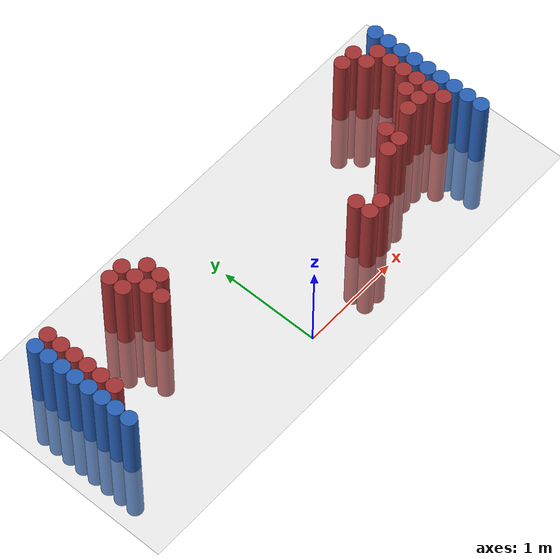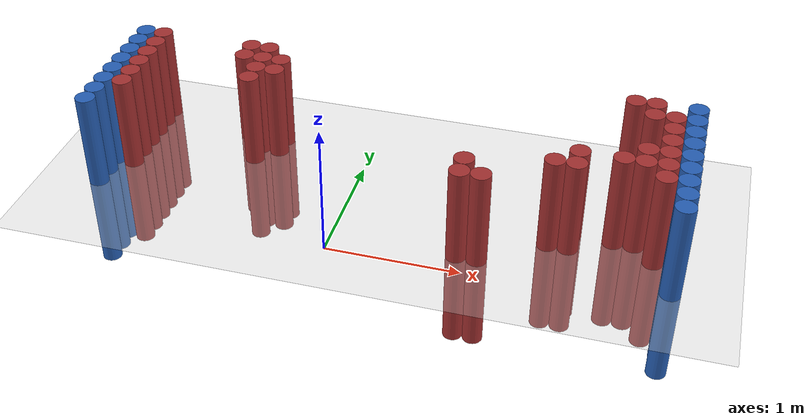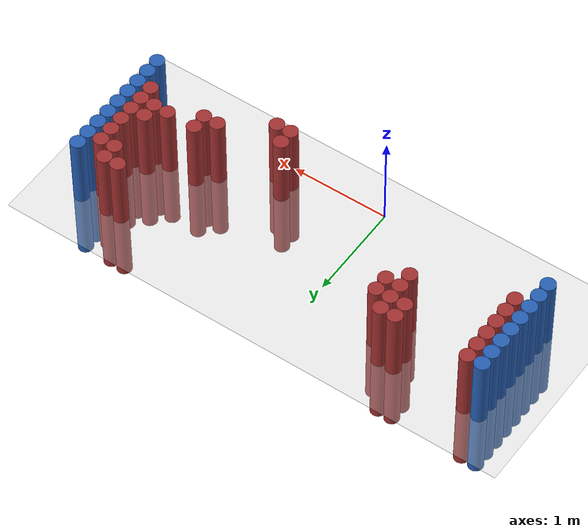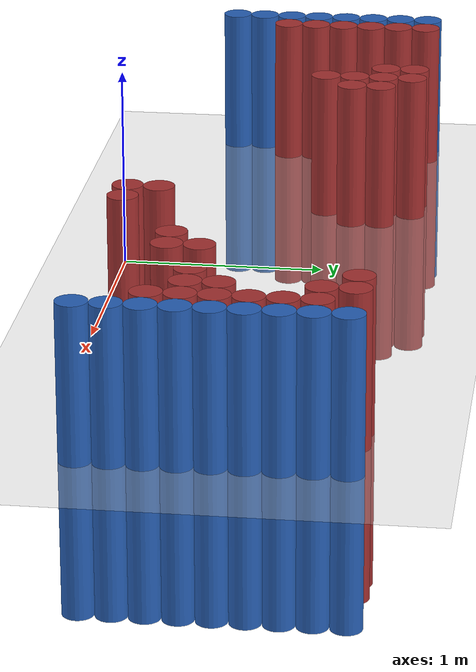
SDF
<sdf version="1.6">
 <world name="default">
  <model name="ground_plane">
   <static>1</static>
   <link name="link">
    <collision name="collision">
     <geometry><plane><normal>0 0 1</normal><size>100 100</size></plane></geometry>
     <surface><friction><ode><mu>100</mu><mu2>50</mu2></ode></friction></surface>
    </collision>
    <visual name="visual">
     <cast_shadows>0</cast_shadows>
     <geometry><plane><normal>0 0 1</normal><size>100 100</size></plane></geometry>
     <material>
      <script><uri>file://media/materials/scripts/gazebo.material</uri><name>Gazebo/Grey</name></script>
     </material>
    </visual>
   </link>
  </model>
  <model name="unit_cylinder_97">
   <static>1</static>
   <pose>-1.925000 0.325000 0.000000 0.000000 0.000000 0.000000</pose>
   <link name="link">
    <inertial>
     <mass>1</mass>
     <inertia><ixx>0.145833</ixx><ixy>0</ixy><ixz>0</ixz><iyy>0.145833</iyy><iyz>0</iyz><izz>0.125</izz></inertia>
    </inertial>
    <collision name="collision">
     <geometry><cylinder><radius>0.075000</radius><length>1.5</length></cylinder></geometry>
    </collision>
    <visual name="visual">
     <geometry><cylinder><radius>0.075000</radius><length>1.5</length></cylinder></geometry>
     <material>
      <ambient>0.152000 0.379000 0.720000 1</ambient>
      <diffuse>0.152000 0.379000 0.720000 1</diffuse>
     </material>
     <material>
      <script><name>Gazebo/Grey</name><uri>file://media/materials/scripts/gazebo.material</uri></script>
     </material>
    </visual>
   </link>
  </model>
  <model name="unit_cylinder_98">
   <static>1</static>
   <pose>-1.925000 0.475000 0.000000 0.000000 0.000000 0.000000</pose>
   <link name="link">
    <inertial>
     <mass>1</mass>
     <inertia><ixx>0.145833</ixx><ixy>0</ixy><ixz>0</ixz><iyy>0.145833</iyy><iyz>0</iyz><izz>0.125</izz></inertia>
    </inertial>
    <collision name="collision">
     <geometry><cylinder><radius>0.075000</radius><length>1.5</length></cylinder></geometry>
    </collision>
    <visual name="visual">
     <geometry><cylinder><radius>0.075000</radius><length>1.5</length></cylinder></geometry>
     <material>
      <ambient>0.152000 0.379000 0.720000 1</ambient>
      <diffuse>0.152000 0.379000 0.720000 1</diffuse>
     </material>
     <material>
      <script><name>Gazebo/Grey</name><uri>file://media/materials/scripts/gazebo.material</uri></script>
     </material>
    </visual>
   </link>
  </model>
  <model name="unit_cylinder_99">
   <static>1</static>
   <pose>-1.925000 0.625000 0.000000 0.000000 0.000000 0.000000</pose>
   <link name="link">
    <inertial>
     <mass>1</mass>
     <inertia><ixx>0.145833</ixx><ixy>0</ixy><ixz>0</ixz><iyy>0.145833</iyy><iyz>0</iyz><izz>0.125</izz></inertia>
    </inertial>
    <collision name="collision">
     <geometry><cylinder><radius>0.075000</radius><length>1.5</length></cylinder></geometry>
    </collision>
    <visual name="visual">
     <geometry><cylinder><radius>0.075000</radius><length>1.5</length></cylinder></geometry>
     <material>
      <ambient>0.152000 0.379000 0.720000 1</ambient>
      <diffuse>0.152000 0.379000 0.720000 1</diffuse>
     </material>
     <material>
      <script><name>Gazebo/Grey</name><uri>file://media/materials/scripts/gazebo.material</uri></script>
     </material>
    </visual>
   </link>
  </model>
  <model name="unit_cylinder_100">
   <static>1</static>
   <pose>-1.925000 0.775000 0.000000 0.000000 0.000000 0.000000</pose>
   <link name="link">
    <inertial>
     <mass>1</mass>
     <inertia><ixx>0.145833</ixx><ixy>0</ixy><ixz>0</ixz><iyy>0.145833</iyy><iyz>0</iyz><izz>0.125</izz></inertia>
    </inertial>
    <collision name="collision">
     <geometry><cylinder><radius>0.075000</radius><length>1.5</length></cylinder></geometry>
    </collision>
    <visual name="visual">
     <geometry><cylinder><radius>0.075000</radius><length>1.5</length></cylinder></geometry>
     <material>
      <ambient>0.152000 0.379000 0.720000 1</ambient>
      <diffuse>0.152000 0.379000 0.720000 1</diffuse>
     </material>
     <material>
      <script><name>Gazebo/Grey</name><uri>file://media/materials/scripts/gazebo.material</uri></script>
     </material>
    </visual>
   </link>
  </model>
  <model name="unit_cylinder_101">
   <static>1</static>
   <pose>-1.925000 0.925000 0.000000 0.000000 0.000000 0.000000</pose>
   <link name="link">
    <inertial>
     <mass>1</mass>
     <inertia><ixx>0.145833</ixx><ixy>0</ixy><ixz>0</ixz><iyy>0.145833</iyy><iyz>0</iyz><izz>0.125</izz></inertia>
    </inertial>
    <collision name="collision">
     <geometry><cylinder><radius>0.075000</radius><length>1.5</length></cylinder></geometry>
    </collision>
    <visual name="visual">
     <geometry><cylinder><radius>0.075000</radius><length>1.5</length></cylinder></geometry>
     <material>
      <ambient>0.152000 0.379000 0.720000 1</ambient>
      <diffuse>0.152000 0.379000 0.720000 1</diffuse>
     </material>
     <material>
      <script><name>Gazebo/Grey</name><uri>file://media/materials/scripts/gazebo.material</uri></script>
     </material>
    </visual>
   </link>
  </model>
  <model name="unit_cylinder_102">
   <static>1</static>
   <pose>-1.925000 1.075000 0.000000 0.000000 0.000000 0.000000</pose>
   <link name="link">
    <inertial>
     <mass>1</mass>
     <inertia><ixx>0.145833</ixx><ixy>0</ixy><ixz>0</ixz><iyy>0.145833</iyy><iyz>0</iyz><izz>0.125</izz></inertia>
    </inertial>
    <collision name="collision">
     <geometry><cylinder><radius>0.075000</radius><length>1.5</length></cylinder></geometry>
    </collision>
    <visual name="visual">
     <geometry><cylinder><radius>0.075000</radius><length>1.5</length></cylinder></geometry>
     <material>
      <ambient>0.152000 0.379000 0.720000 1</ambient>
      <diffuse>0.152000 0.379000 0.720000 1</diffuse>
     </material>
     <material>
      <script><name>Gazebo/Grey</name><uri>file://media/materials/scripts/gazebo.material</uri></script>
     </material>
    </visual>
   </link>
  </model>
  <model name="unit_cylinder_103">
   <static>1</static>
   <pose>-1.925000 1.225000 0.000000 0.000000 0.000000 0.000000</pose>
   <link name="link">
    <inertial>
     <mass>1</mass>
     <inertia><ixx>0.145833</ixx><ixy>0</ixy><ixz>0</ixz><iyy>0.145833</iyy><iyz>0</iyz><izz>0.125</izz></inertia>
    </inertial>
    <collision name="collision">
     <geometry><cylinder><radius>0.075000</radius><length>1.5</length></cylinder></geometry>
    </collision>
    <visual name="visual">
     <geometry><cylinder><radius>0.075000</radius><length>1.5</length></cylinder></geometry>
     <material>
      <ambient>0.152000 0.379000 0.720000 1</ambient>
      <diffuse>0.152000 0.379000 0.720000 1</diffuse>
     </material>
     <material>
      <script><name>Gazebo/Grey</name><uri>file://media/materials/scripts/gazebo.material</uri></script>
     </material>
    </visual>
   </link>
  </model>
  <model name="unit_cylinder_104">
   <static>1</static>
   <pose>-1.925000 1.375000 0.000000 0.000000 0.000000 0.000000</pose>
   <link name="link">
    <inertial>
     <mass>1</mass>
     <inertia><ixx>0.145833</ixx><ixy>0</ixy><ixz>0</ixz><iyy>0.145833</iyy><iyz>0</iyz><izz>0.125</izz></inertia>
    </inertial>
    <collision name="collision">
     <geometry><cylinder><radius>0.075000</radius><length>1.5</length></cylinder></geometry>
    </collision>
    <visual name="visual">
     <geometry><cylinder><radius>0.075000</radius><length>1.5</length></cylinder></geometry>
     <material>
      <ambient>0.152000 0.379000 0.720000 1</ambient>
      <diffuse>0.152000 0.379000 0.720000 1</diffuse>
     </material>
     <material>
      <script><name>Gazebo/Grey</name><uri>file://media/materials/scripts/gazebo.material</uri></script>
     </material>
    </visual>
   </link>
  </model>
  <model name="unit_cylinder_126">
   <static>1</static>
   <pose>-1.775000 0.625000 0.000000 0.000000 0.000000 0.000000</pose>
   <link name="link">
    <inertial>
     <mass>1</mass>
     <inertia><ixx>0.145833</ixx><ixy>0</ixy><ixz>0</ixz><iyy>0.145833</iyy><iyz>0</iyz><izz>0.125</izz></inertia>
    </inertial>
    <collision name="collision">
     <geometry><cylinder><radius>0.075000</radius><length>1.5</length></cylinder></geometry>
    </collision>
    <visual name="visual">
     <geometry><cylinder><radius>0.075000</radius><length>1.5</length></cylinder></geometry>
     <material>
      <ambient>0.648000 0.192000 0.192000 1</ambient>
      <diffuse>0.648000 0.192000 0.192000 1</diffuse>
     </material>
     <material>
      <script><name>Gazebo/Grey</name><uri>file://media/materials/scripts/gazebo.material</uri></script>
     </material>
    </visual>
   </link>
  </model>
  <model name="unit_cylinder_127">
   <static>1</static>
   <pose>-1.775000 0.775000 0.000000 0.000000 0.000000 0.000000</pose>
   <link name="link">
    <inertial>
     <mass>1</mass>
     <inertia><ixx>0.145833</ixx><ixy>0</ixy><ixz>0</ixz><iyy>0.145833</iyy><iyz>0</iyz><izz>0.125</izz></inertia>
    </inertial>
    <collision name="collision">
     <geometry><cylinder><radius>0.075000</radius><length>1.5</length></cylinder></geometry>
    </collision>
    <visual name="visual">
     <geometry><cylinder><radius>0.075000</radius><length>1.5</length></cylinder></geometry>
     <material>
      <ambient>0.648000 0.192000 0.192000 1</ambient>
      <diffuse>0.648000 0.192000 0.192000 1</diffuse>
     </material>
     <material>
      <script><name>Gazebo/Grey</name><uri>file://media/materials/scripts/gazebo.material</uri></script>
     </material>
    </visual>
   </link>
  </model>
  <model name="unit_cylinder_128">
   <static>1</static>
   <pose>-1.775000 0.925000 0.000000 0.000000 0.000000 0.000000</pose>
   <link name="link">
    <inertial>
     <mass>1</mass>
     <inertia><ixx>0.145833</ixx><ixy>0</ixy><ixz>0</ixz><iyy>0.145833</iyy><iyz>0</iyz><izz>0.125</izz></inertia>
    </inertial>
    <collision name="collision">
     <geometry><cylinder><radius>0.075000</radius><length>1.5</length></cylinder></geometry>
    </collision>
    <visual name="visual">
     <geometry><cylinder><radius>0.075000</radius><length>1.5</length></cylinder></geometry>
     <material>
      <ambient>0.648000 0.192000 0.192000 1</ambient>
      <diffuse>0.648000 0.192000 0.192000 1</diffuse>
     </material>
     <material>
      <script><name>Gazebo/Grey</name><uri>file://media/materials/scripts/gazebo.material</uri></script>
     </material>
    </visual>
   </link>
  </model>
  <model name="unit_cylinder_129">
   <static>1</static>
   <pose>-1.775000 1.075000 0.000000 0.000000 0.000000 0.000000</pose>
   <link name="link">
    <inertial>
     <mass>1</mass>
     <inertia><ixx>0.145833</ixx><ixy>0</ixy><ixz>0</ixz><iyy>0.145833</iyy><iyz>0</iyz><izz>0.125</izz></inertia>
    </inertial>
    <collision name="collision">
     <geometry><cylinder><radius>0.075000</radius><length>1.5</length></cylinder></geometry>
    </collision>
    <visual name="visual">
     <geometry><cylinder><radius>0.075000</radius><length>1.5</length></cylinder></geometry>
     <material>
      <ambient>0.648000 0.192000 0.192000 1</ambient>
      <diffuse>0.648000 0.192000 0.192000 1</diffuse>
     </material>
     <material>
      <script><name>Gazebo/Grey</name><uri>file://media/materials/scripts/gazebo.material</uri></script>
     </material>
    </visual>
   </link>
  </model>
  <model name="unit_cylinder_130">
   <static>1</static>
   <pose>-1.775000 1.225000 0.000000 0.000000 0.000000 0.000000</pose>
   <link name="link">
    <inertial>
     <mass>1</mass>
     <inertia><ixx>0.145833</ixx><ixy>0</ixy><ixz>0</ixz><iyy>0.145833</iyy><iyz>0</iyz><izz>0.125</izz></inertia>
    </inertial>
    <collision name="collision">
     <geometry><cylinder><radius>0.075000</radius><length>1.5</length></cylinder></geometry>
    </collision>
    <visual name="visual">
     <geometry><cylinder><radius>0.075000</radius><length>1.5</length></cylinder></geometry>
     <material>
      <ambient>0.648000 0.192000 0.192000 1</ambient>
      <diffuse>0.648000 0.192000 0.192000 1</diffuse>
     </material>
     <material>
      <script><name>Gazebo/Grey</name><uri>file://media/materials/scripts/gazebo.material</uri></script>
     </material>
    </visual>
   </link>
  </model>
  <model name="unit_cylinder_131">
   <static>1</static>
   <pose>-1.775000 1.375000 0.000000 0.000000 0.000000 0.000000</pose>
   <link name="link">
    <inertial>
     <mass>1</mass>
     <inertia><ixx>0.145833</ixx><ixy>0</ixy><ixz>0</ixz><iyy>0.145833</iyy><iyz>0</iyz><izz>0.125</izz></inertia>
    </inertial>
    <collision name="collision">
     <geometry><cylinder><radius>0.075000</radius><length>1.5</length></cylinder></geometry>
    </collision>
    <visual name="visual">
     <geometry><cylinder><radius>0.075000</radius><length>1.5</length></cylinder></geometry>
     <material>
      <ambient>0.648000 0.192000 0.192000 1</ambient>
      <diffuse>0.648000 0.192000 0.192000 1</diffuse>
     </material>
     <material>
      <script><name>Gazebo/Grey</name><uri>file://media/materials/scripts/gazebo.material</uri></script>
     </material>
    </visual>
   </link>
  </model>
  <model name="unit_cylinder_159">
   <static>1</static>
   <pose>-1.025000 1.225000 0.000000 0.000000 0.000000 0.000000</pose>
   <link name="link">
    <inertial>
     <mass>1</mass>
     <inertia><ixx>0.145833</ixx><ixy>0</ixy><ixz>0</ixz><iyy>0.145833</iyy><iyz>0</iyz><izz>0.125</izz></inertia>
    </inertial>
    <collision name="collision">
     <geometry><cylinder><radius>0.075000</radius><length>1.5</length></cylinder></geometry>
    </collision>
    <visual name="visual">
     <geometry><cylinder><radius>0.075000</radius><length>1.5</length></cylinder></geometry>
     <material>
      <ambient>0.648000 0.192000 0.192000 1</ambient>
      <diffuse>0.648000 0.192000 0.192000 1</diffuse>
     </material>
     <material>
      <script><name>Gazebo/Grey</name><uri>file://media/materials/scripts/gazebo.material</uri></script>
     </material>
    </visual>
   </link>
  </model>
  <model name="unit_cylinder_160">
   <static>1</static>
   <pose>-1.025000 1.375000 0.000000 0.000000 0.000000 0.000000</pose>
   <link name="link">
    <inertial>
     <mass>1</mass>
     <inertia><ixx>0.145833</ixx><ixy>0</ixy><ixz>0</ixz><iyy>0.145833</iyy><iyz>0</iyz><izz>0.125</izz></inertia>
    </inertial>
    <collision name="collision">
     <geometry><cylinder><radius>0.075000</radius><length>1.5</length></cylinder></geometry>
    </collision>
    <visual name="visual">
     <geometry><cylinder><radius>0.075000</radius><length>1.5</length></cylinder></geometry>
     <material>
      <ambient>0.648000 0.192000 0.192000 1</ambient>
      <diffuse>0.648000 0.192000 0.192000 1</diffuse>
     </material>
     <material>
      <script><name>Gazebo/Grey</name><uri>file://media/materials/scripts/gazebo.material</uri></script>
     </material>
    </visual>
   </link>
  </model>
  <model name="unit_cylinder_167">
   <static>1</static>
   <pose>-0.875000 0.925000 0.000000 0.000000 0.000000 0.000000</pose>
   <link name="link">
    <inertial>
     <mass>1</mass>
     <inertia><ixx>0.145833</ixx><ixy>0</ixy><ixz>0</ixz><iyy>0.145833</iyy><iyz>0</iyz><izz>0.125</izz></inertia>
    </inertial>
    <collision name="collision">
     <geometry><cylinder><radius>0.075000</radius><length>1.5</length></cylinder></geometry>
    </collision>
    <visual name="visual">
     <geometry><cylinder><radius>0.075000</radius><length>1.5</length></cylinder></geometry>
     <material>
      <ambient>0.648000 0.192000 0.192000 1</ambient>
      <diffuse>0.648000 0.192000 0.192000 1</diffuse>
     </material>
     <material>
      <script><name>Gazebo/Grey</name><uri>file://media/materials/scripts/gazebo.material</uri></script>
     </material>
    </visual>
   </link>
  </model>
  <model name="unit_cylinder_168">
   <static>1</static>
   <pose>-0.875000 1.075000 0.000000 0.000000 0.000000 0.000000</pose>
   <link name="link">
    <inertial>
     <mass>1</mass>
     <inertia><ixx>0.145833</ixx><ixy>0</ixy><ixz>0</ixz><iyy>0.145833</iyy><iyz>0</iyz><izz>0.125</izz></inertia>
    </inertial>
    <collision name="collision">
     <geometry><cylinder><radius>0.075000</radius><length>1.5</length></cylinder></geometry>
    </collision>
    <visual name="visual">
     <geometry><cylinder><radius>0.075000</radius><length>1.5</length></cylinder></geometry>
     <material>
      <ambient>0.648000 0.192000 0.192000 1</ambient>
      <diffuse>0.648000 0.192000 0.192000 1</diffuse>
     </material>
     <material>
      <script><name>Gazebo/Grey</name><uri>file://media/materials/scripts/gazebo.material</uri></script>
     </material>
    </visual>
   </link>
  </model>
  <model name="unit_cylinder_169">
   <static>1</static>
   <pose>-0.875000 1.225000 0.000000 0.000000 0.000000 0.000000</pose>
   <link name="link">
    <inertial>
     <mass>1</mass>
     <inertia><ixx>0.145833</ixx><ixy>0</ixy><ixz>0</ixz><iyy>0.145833</iyy><iyz>0</iyz><izz>0.125</izz></inertia>
    </inertial>
    <collision name="collision">
     <geometry><cylinder><radius>0.075000</radius><length>1.5</length></cylinder></geometry>
    </collision>
    <visual name="visual">
     <geometry><cylinder><radius>0.075000</radius><length>1.5</length></cylinder></geometry>
     <material>
      <ambient>0.648000 0.192000 0.192000 1</ambient>
      <diffuse>0.648000 0.192000 0.192000 1</diffuse>
     </material>
     <material>
      <script><name>Gazebo/Grey</name><uri>file://media/materials/scripts/gazebo.material</uri></script>
     </material>
    </visual>
   </link>
  </model>
  <model name="unit_cylinder_170">
   <static>1</static>
   <pose>-0.875000 1.375000 0.000000 0.000000 0.000000 0.000000</pose>
   <link name="link">
    <inertial>
     <mass>1</mass>
     <inertia><ixx>0.145833</ixx><ixy>0</ixy><ixz>0</ixz><iyy>0.145833</iyy><iyz>0</iyz><izz>0.125</izz></inertia>
    </inertial>
    <collision name="collision">
     <geometry><cylinder><radius>0.075000</radius><length>1.5</length></cylinder></geometry>
    </collision>
    <visual name="visual">
     <geometry><cylinder><radius>0.075000</radius><length>1.5</length></cylinder></geometry>
     <material>
      <ambient>0.648000 0.192000 0.192000 1</ambient>
      <diffuse>0.648000 0.192000 0.192000 1</diffuse>
     </material>
     <material>
      <script><name>Gazebo/Grey</name><uri>file://media/materials/scripts/gazebo.material</uri></script>
     </material>
    </visual>
   </link>
  </model>
  <model name="unit_cylinder_174">
   <static>1</static>
   <pose>-0.725000 1.075000 0.000000 0.000000 0.000000 0.000000</pose>
   <link name="link">
    <inertial>
     <mass>1</mass>
     <inertia><ixx>0.145833</ixx><ixy>0</ixy><ixz>0</ixz><iyy>0.145833</iyy><iyz>0</iyz><izz>0.125</izz></inertia>
    </inertial>
    <collision name="collision">
     <geometry><cylinder><radius>0.075000</radius><length>1.5</length></cylinder></geometry>
    </collision>
    <visual name="visual">
     <geometry><cylinder><radius>0.075000</radius><length>1.5</length></cylinder></geometry>
     <material>
      <ambient>0.648000 0.192000 0.192000 1</ambient>
      <diffuse>0.648000 0.192000 0.192000 1</diffuse>
     </material>
     <material>
      <script><name>Gazebo/Grey</name><uri>file://media/materials/scripts/gazebo.material</uri></script>
     </material>
    </visual>
   </link>
  </model>
  <model name="unit_cylinder_175">
   <static>1</static>
   <pose>-0.725000 1.225000 0.000000 0.000000 0.000000 0.000000</pose>
   <link name="link">
    <inertial>
     <mass>1</mass>
     <inertia><ixx>0.145833</ixx><ixy>0</ixy><ixz>0</ixz><iyy>0.145833</iyy><iyz>0</iyz><izz>0.125</izz></inertia>
    </inertial>
    <collision name="collision">
     <geometry><cylinder><radius>0.075000</radius><length>1.5</length></cylinder></geometry>
    </collision>
    <visual name="visual">
     <geometry><cylinder><radius>0.075000</radius><length>1.5</length></cylinder></geometry>
     <material>
      <ambient>0.648000 0.192000 0.192000 1</ambient>
      <diffuse>0.648000 0.192000 0.192000 1</diffuse>
     </material>
     <material>
      <script><name>Gazebo/Grey</name><uri>file://media/materials/scripts/gazebo.material</uri></script>
     </material>
    </visual>
   </link>
  </model>
  <model name="unit_cylinder_218">
   <static>1</static>
   <pose>0.925000 0.175000 0.000000 0.000000 0.000000 0.000000</pose>
   <link name="link">
    <inertial>
     <mass>1</mass>
     <inertia><ixx>0.145833</ixx><ixy>0</ixy><ixz>0</ixz><iyy>0.145833</iyy><iyz>0</iyz><izz>0.125</izz></inertia>
    </inertial>
    <collision name="collision">
     <geometry><cylinder><radius>0.075000</radius><length>1.5</length></cylinder></geometry>
    </collision>
    <visual name="visual">
     <geometry><cylinder><radius>0.075000</radius><length>1.5</length></cylinder></geometry>
     <material>
      <ambient>0.648000 0.192000 0.192000 1</ambient>
      <diffuse>0.648000 0.192000 0.192000 1</diffuse>
     </material>
     <material>
      <script><name>Gazebo/Grey</name><uri>file://media/materials/scripts/gazebo.material</uri></script>
     </material>
    </visual>
   </link>
  </model>
  <model name="unit_cylinder_219">
   <static>1</static>
   <pose>0.925000 0.325000 0.000000 0.000000 0.000000 0.000000</pose>
   <link name="link">
    <inertial>
     <mass>1</mass>
     <inertia><ixx>0.145833</ixx><ixy>0</ixy><ixz>0</ixz><iyy>0.145833</iyy><iyz>0</iyz><izz>0.125</izz></inertia>
    </inertial>
    <collision name="collision">
     <geometry><cylinder><radius>0.075000</radius><length>1.5</length></cylinder></geometry>
    </collision>
    <visual name="visual">
     <geometry><cylinder><radius>0.075000</radius><length>1.5</length></cylinder></geometry>
     <material>
      <ambient>0.648000 0.192000 0.192000 1</ambient>
      <diffuse>0.648000 0.192000 0.192000 1</diffuse>
     </material>
     <material>
      <script><name>Gazebo/Grey</name><uri>file://media/materials/scripts/gazebo.material</uri></script>
     </material>
    </visual>
   </link>
  </model>
  <model name="unit_cylinder_220">
   <static>1</static>
   <pose>1.075000 0.175000 0.000000 0.000000 0.000000 0.000000</pose>
   <link name="link">
    <inertial>
     <mass>1</mass>
     <inertia><ixx>0.145833</ixx><ixy>0</ixy><ixz>0</ixz><iyy>0.145833</iyy><iyz>0</iyz><izz>0.125</izz></inertia>
    </inertial>
    <collision name="collision">
     <geometry><cylinder><radius>0.075000</radius><length>1.5</length></cylinder></geometry>
    </collision>
    <visual name="visual">
     <geometry><cylinder><radius>0.075000</radius><length>1.5</length></cylinder></geometry>
     <material>
      <ambient>0.648000 0.192000 0.192000 1</ambient>
      <diffuse>0.648000 0.192000 0.192000 1</diffuse>
     </material>
     <material>
      <script><name>Gazebo/Grey</name><uri>file://media/materials/scripts/gazebo.material</uri></script>
     </material>
    </visual>
   </link>
  </model>
  <model name="unit_cylinder_221">
   <static>1</static>
   <pose>1.525000 0.475000 0.000000 0.000000 0.000000 0.000000</pose>
   <link name="link">
    <inertial>
     <mass>1</mass>
     <inertia><ixx>0.145833</ixx><ixy>0</ixy><ixz>0</ixz><iyy>0.145833</iyy><iyz>0</iyz><izz>0.125</izz></inertia>
    </inertial>
    <collision name="collision">
     <geometry><cylinder><radius>0.075000</radius><length>1.5</length></cylinder></geometry>
    </collision>
    <visual name="visual">
     <geometry><cylinder><radius>0.075000</radius><length>1.5</length></cylinder></geometry>
     <material>
      <ambient>0.648000 0.192000 0.192000 1</ambient>
      <diffuse>0.648000 0.192000 0.192000 1</diffuse>
     </material>
     <material>
      <script><name>Gazebo/Grey</name><uri>file://media/materials/scripts/gazebo.material</uri></script>
     </material>
    </visual>
   </link>
  </model>
  <model name="unit_cylinder_222">
   <static>1</static>
   <pose>1.675000 0.475000 0.000000 0.000000 0.000000 0.000000</pose>
   <link name="link">
    <inertial>
     <mass>1</mass>
     <inertia><ixx>0.145833</ixx><ixy>0</ixy><ixz>0</ixz><iyy>0.145833</iyy><iyz>0</iyz><izz>0.125</izz></inertia>
    </inertial>
    <collision name="collision">
     <geometry><cylinder><radius>0.075000</radius><length>1.5</length></cylinder></geometry>
    </collision>
    <visual name="visual">
     <geometry><cylinder><radius>0.075000</radius><length>1.5</length></cylinder></geometry>
     <material>
      <ambient>0.648000 0.192000 0.192000 1</ambient>
      <diffuse>0.648000 0.192000 0.192000 1</diffuse>
     </material>
     <material>
      <script><name>Gazebo/Grey</name><uri>file://media/materials/scripts/gazebo.material</uri></script>
     </material>
    </visual>
   </link>
  </model>
  <model name="unit_cylinder_223">
   <static>1</static>
   <pose>1.675000 0.625000 0.000000 0.000000 0.000000 0.000000</pose>
   <link name="link">
    <inertial>
     <mass>1</mass>
     <inertia><ixx>0.145833</ixx><ixy>0</ixy><ixz>0</ixz><iyy>0.145833</iyy><iyz>0</iyz><izz>0.125</izz></inertia>
    </inertial>
    <collision name="collision">
     <geometry><cylinder><radius>0.075000</radius><length>1.5</length></cylinder></geometry>
    </collision>
    <visual name="visual">
     <geometry><cylinder><radius>0.075000</radius><length>1.5</length></cylinder></geometry>
     <material>
      <ambient>0.648000 0.192000 0.192000 1</ambient>
      <diffuse>0.648000 0.192000 0.192000 1</diffuse>
     </material>
     <material>
      <script><name>Gazebo/Grey</name><uri>file://media/materials/scripts/gazebo.material</uri></script>
     </material>
    </visual>
   </link>
  </model>
  <model name="unit_cylinder_228">
   <static>1</static>
   <pose>1.975000 0.625000 0.000000 0.000000 0.000000 0.000000</pose>
   <link name="link">
    <inertial>
     <mass>1</mass>
     <inertia><ixx>0.145833</ixx><ixy>0</ixy><ixz>0</ixz><iyy>0.145833</iyy><iyz>0</iyz><izz>0.125</izz></inertia>
    </inertial>
    <collision name="collision">
     <geometry><cylinder><radius>0.075000</radius><length>1.5</length></cylinder></geometry>
    </collision>
    <visual name="visual">
     <geometry><cylinder><radius>0.075000</radius><length>1.5</length></cylinder></geometry>
     <material>
      <ambient>0.648000 0.192000 0.192000 1</ambient>
      <diffuse>0.648000 0.192000 0.192000 1</diffuse>
     </material>
     <material>
      <script><name>Gazebo/Grey</name><uri>file://media/materials/scripts/gazebo.material</uri></script>
     </material>
    </visual>
   </link>
  </model>
  <model name="unit_cylinder_229">
   <static>1</static>
   <pose>1.975000 1.375000 0.000000 0.000000 0.000000 0.000000</pose>
   <link name="link">
    <inertial>
     <mass>1</mass>
     <inertia><ixx>0.145833</ixx><ixy>0</ixy><ixz>0</ixz><iyy>0.145833</iyy><iyz>0</iyz><izz>0.125</izz></inertia>
    </inertial>
    <collision name="collision">
     <geometry><cylinder><radius>0.075000</radius><length>1.5</length></cylinder></geometry>
    </collision>
    <visual name="visual">
     <geometry><cylinder><radius>0.075000</radius><length>1.5</length></cylinder></geometry>
     <material>
      <ambient>0.648000 0.192000 0.192000 1</ambient>
      <diffuse>0.648000 0.192000 0.192000 1</diffuse>
     </material>
     <material>
      <script><name>Gazebo/Grey</name><uri>file://media/materials/scripts/gazebo.material</uri></script>
     </material>
    </visual>
   </link>
  </model>
  <model name="unit_cylinder_234">
   <static>1</static>
   <pose>2.125000 0.625000 0.000000 0.000000 0.000000 0.000000</pose>
   <link name="link">
    <inertial>
     <mass>1</mass>
     <inertia><ixx>0.145833</ixx><ixy>0</ixy><ixz>0</ixz><iyy>0.145833</iyy><iyz>0</iyz><izz>0.125</izz></inertia>
    </inertial>
    <collision name="collision">
     <geometry><cylinder><radius>0.075000</radius><length>1.5</length></cylinder></geometry>
    </collision>
    <visual name="visual">
     <geometry><cylinder><radius>0.075000</radius><length>1.5</length></cylinder></geometry>
     <material>
      <ambient>0.648000 0.192000 0.192000 1</ambient>
      <diffuse>0.648000 0.192000 0.192000 1</diffuse>
     </material>
     <material>
      <script><name>Gazebo/Grey</name><uri>file://media/materials/scripts/gazebo.material</uri></script>
     </material>
    </visual>
   </link>
  </model>
  <model name="unit_cylinder_235">
   <static>1</static>
   <pose>2.125000 0.775000 0.000000 0.000000 0.000000 0.000000</pose>
   <link name="link">
    <inertial>
     <mass>1</mass>
     <inertia><ixx>0.145833</ixx><ixy>0</ixy><ixz>0</ixz><iyy>0.145833</iyy><iyz>0</iyz><izz>0.125</izz></inertia>
    </inertial>
    <collision name="collision">
     <geometry><cylinder><radius>0.075000</radius><length>1.5</length></cylinder></geometry>
    </collision>
    <visual name="visual">
     <geometry><cylinder><radius>0.075000</radius><length>1.5</length></cylinder></geometry>
     <material>
      <ambient>0.648000 0.192000 0.192000 1</ambient>
      <diffuse>0.648000 0.192000 0.192000 1</diffuse>
     </material>
     <material>
      <script><name>Gazebo/Grey</name><uri>file://media/materials/scripts/gazebo.material</uri></script>
     </material>
    </visual>
   </link>
  </model>
  <model name="unit_cylinder_236">
   <static>1</static>
   <pose>2.125000 1.225000 0.000000 0.000000 0.000000 0.000000</pose>
   <link name="link">
    <inertial>
     <mass>1</mass>
     <inertia><ixx>0.145833</ixx><ixy>0</ixy><ixz>0</ixz><iyy>0.145833</iyy><iyz>0</iyz><izz>0.125</izz></inertia>
    </inertial>
    <collision name="collision">
     <geometry><cylinder><radius>0.075000</radius><length>1.5</length></cylinder></geometry>
    </collision>
    <visual name="visual">
     <geometry><cylinder><radius>0.075000</radius><length>1.5</length></cylinder></geometry>
     <material>
      <ambient>0.648000 0.192000 0.192000 1</ambient>
      <diffuse>0.648000 0.192000 0.192000 1</diffuse>
     </material>
     <material>
      <script><name>Gazebo/Grey</name><uri>file://media/materials/scripts/gazebo.material</uri></script>
     </material>
    </visual>
   </link>
  </model>
  <model name="unit_cylinder_237">
   <static>1</static>
   <pose>2.125000 1.375000 0.000000 0.000000 0.000000 0.000000</pose>
   <link name="link">
    <inertial>
     <mass>1</mass>
     <inertia><ixx>0.145833</ixx><ixy>0</ixy><ixz>0</ixz><iyy>0.145833</iyy><iyz>0</iyz><izz>0.125</izz></inertia>
    </inertial>
    <collision name="collision">
     <geometry><cylinder><radius>0.075000</radius><length>1.5</length></cylinder></geometry>
    </collision>
    <visual name="visual">
     <geometry><cylinder><radius>0.075000</radius><length>1.5</length></cylinder></geometry>
     <material>
      <ambient>0.648000 0.192000 0.192000 1</ambient>
      <diffuse>0.648000 0.192000 0.192000 1</diffuse>
     </material>
     <material>
      <script><name>Gazebo/Grey</name><uri>file://media/materials/scripts/gazebo.material</uri></script>
     </material>
    </visual>
   </link>
  </model>
  <model name="unit_cylinder_245">
   <static>1</static>
   <pose>2.275000 0.475000 0.000000 0.000000 0.000000 0.000000</pose>
   <link name="link">
    <inertial>
     <mass>1</mass>
     <inertia><ixx>0.145833</ixx><ixy>0</ixy><ixz>0</ixz><iyy>0.145833</iyy><iyz>0</iyz><izz>0.125</izz></inertia>
    </inertial>
    <collision name="collision">
     <geometry><cylinder><radius>0.075000</radius><length>1.5</length></cylinder></geometry>
    </collision>
    <visual name="visual">
     <geometry><cylinder><radius>0.075000</radius><length>1.5</length></cylinder></geometry>
     <material>
      <ambient>0.648000 0.192000 0.192000 1</ambient>
      <diffuse>0.648000 0.192000 0.192000 1</diffuse>
     </material>
     <material>
      <script><name>Gazebo/Grey</name><uri>file://media/materials/scripts/gazebo.material</uri></script>
     </material>
    </visual>
   </link>
  </model>
  <model name="unit_cylinder_246">
   <static>1</static>
   <pose>2.275000 0.625000 0.000000 0.000000 0.000000 0.000000</pose>
   <link name="link">
    <inertial>
     <mass>1</mass>
     <inertia><ixx>0.145833</ixx><ixy>0</ixy><ixz>0</ixz><iyy>0.145833</iyy><iyz>0</iyz><izz>0.125</izz></inertia>
    </inertial>
    <collision name="collision">
     <geometry><cylinder><radius>0.075000</radius><length>1.5</length></cylinder></geometry>
    </collision>
    <visual name="visual">
     <geometry><cylinder><radius>0.075000</radius><length>1.5</length></cylinder></geometry>
     <material>
      <ambient>0.648000 0.192000 0.192000 1</ambient>
      <diffuse>0.648000 0.192000 0.192000 1</diffuse>
     </material>
     <material>
      <script><name>Gazebo/Grey</name><uri>file://media/materials/scripts/gazebo.material</uri></script>
     </material>
    </visual>
   </link>
  </model>
  <model name="unit_cylinder_247">
   <static>1</static>
   <pose>2.275000 0.775000 0.000000 0.000000 0.000000 0.000000</pose>
   <link name="link">
    <inertial>
     <mass>1</mass>
     <inertia><ixx>0.145833</ixx><ixy>0</ixy><ixz>0</ixz><iyy>0.145833</iyy><iyz>0</iyz><izz>0.125</izz></inertia>
    </inertial>
    <collision name="collision">
     <geometry><cylinder><radius>0.075000</radius><length>1.5</length></cylinder></geometry>
    </collision>
    <visual name="visual">
     <geometry><cylinder><radius>0.075000</radius><length>1.5</length></cylinder></geometry>
     <material>
      <ambient>0.648000 0.192000 0.192000 1</ambient>
      <diffuse>0.648000 0.192000 0.192000 1</diffuse>
     </material>
     <material>
      <script><name>Gazebo/Grey</name><uri>file://media/materials/scripts/gazebo.material</uri></script>
     </material>
    </visual>
   </link>
  </model>
  <model name="unit_cylinder_248">
   <static>1</static>
   <pose>2.275000 0.925000 0.000000 0.000000 0.000000 0.000000</pose>
   <link name="link">
    <inertial>
     <mass>1</mass>
     <inertia><ixx>0.145833</ixx><ixy>0</ixy><ixz>0</ixz><iyy>0.145833</iyy><iyz>0</iyz><izz>0.125</izz></inertia>
    </inertial>
    <collision name="collision">
     <geometry><cylinder><radius>0.075000</radius><length>1.5</length></cylinder></geometry>
    </collision>
    <visual name="visual">
     <geometry><cylinder><radius>0.075000</radius><length>1.5</length></cylinder></geometry>
     <material>
      <ambient>0.648000 0.192000 0.192000 1</ambient>
      <diffuse>0.648000 0.192000 0.192000 1</diffuse>
     </material>
     <material>
      <script><name>Gazebo/Grey</name><uri>file://media/materials/scripts/gazebo.material</uri></script>
     </material>
    </visual>
   </link>
  </model>
  <model name="unit_cylinder_249">
   <static>1</static>
   <pose>2.275000 1.075000 0.000000 0.000000 0.000000 0.000000</pose>
   <link name="link">
    <inertial>
     <mass>1</mass>
     <inertia><ixx>0.145833</ixx><ixy>0</ixy><ixz>0</ixz><iyy>0.145833</iyy><iyz>0</iyz><izz>0.125</izz></inertia>
    </inertial>
    <collision name="collision">
     <geometry><cylinder><radius>0.075000</radius><length>1.5</length></cylinder></geometry>
    </collision>
    <visual name="visual">
     <geometry><cylinder><radius>0.075000</radius><length>1.5</length></cylinder></geometry>
     <material>
      <ambient>0.648000 0.192000 0.192000 1</ambient>
      <diffuse>0.648000 0.192000 0.192000 1</diffuse>
     </material>
     <material>
      <script><name>Gazebo/Grey</name><uri>file://media/materials/scripts/gazebo.material</uri></script>
     </material>
    </visual>
   </link>
  </model>
  <model name="unit_cylinder_250">
   <static>1</static>
   <pose>2.275000 1.225000 0.000000 0.000000 0.000000 0.000000</pose>
   <link name="link">
    <inertial>
     <mass>1</mass>
     <inertia><ixx>0.145833</ixx><ixy>0</ixy><ixz>0</ixz><iyy>0.145833</iyy><iyz>0</iyz><izz>0.125</izz></inertia>
    </inertial>
    <collision name="collision">
     <geometry><cylinder><radius>0.075000</radius><length>1.5</length></cylinder></geometry>
    </collision>
    <visual name="visual">
     <geometry><cylinder><radius>0.075000</radius><length>1.5</length></cylinder></geometry>
     <material>
      <ambient>0.648000 0.192000 0.192000 1</ambient>
      <diffuse>0.648000 0.192000 0.192000 1</diffuse>
     </material>
     <material>
      <script><name>Gazebo/Grey</name><uri>file://media/materials/scripts/gazebo.material</uri></script>
     </material>
    </visual>
   </link>
  </model>
  <model name="unit_cylinder_262">
   <static>1</static>
   <pose>2.425000 0.175000 0.000000 0.000000 0.000000 0.000000</pose>
   <link name="link">
    <inertial>
     <mass>1</mass>
     <inertia><ixx>0.145833</ixx><ixy>0</ixy><ixz>0</ixz><iyy>0.145833</iyy><iyz>0</iyz><izz>0.125</izz></inertia>
    </inertial>
    <collision name="collision">
     <geometry><cylinder><radius>0.075000</radius><length>1.5</length></cylinder></geometry>
    </collision>
    <visual name="visual">
     <geometry><cylinder><radius>0.075000</radius><length>1.5</length></cylinder></geometry>
     <material>
      <ambient>0.152000 0.379000 0.720000 1</ambient>
      <diffuse>0.152000 0.379000 0.720000 1</diffuse>
     </material>
     <material>
      <script><name>Gazebo/Grey</name><uri>file://media/materials/scripts/gazebo.material</uri></script>
     </material>
    </visual>
   </link>
  </model>
  <model name="unit_cylinder_263">
   <static>1</static>
   <pose>2.425000 0.325000 0.000000 0.000000 0.000000 0.000000</pose>
   <link name="link">
    <inertial>
     <mass>1</mass>
     <inertia><ixx>0.145833</ixx><ixy>0</ixy><ixz>0</ixz><iyy>0.145833</iyy><iyz>0</iyz><izz>0.125</izz></inertia>
    </inertial>
    <collision name="collision">
     <geometry><cylinder><radius>0.075000</radius><length>1.5</length></cylinder></geometry>
    </collision>
    <visual name="visual">
     <geometry><cylinder><radius>0.075000</radius><length>1.5</length></cylinder></geometry>
     <material>
      <ambient>0.152000 0.379000 0.720000 1</ambient>
      <diffuse>0.152000 0.379000 0.720000 1</diffuse>
     </material>
     <material>
      <script><name>Gazebo/Grey</name><uri>file://media/materials/scripts/gazebo.material</uri></script>
     </material>
    </visual>
   </link>
  </model>
  <model name="unit_cylinder_264">
   <static>1</static>
   <pose>2.425000 0.475000 0.000000 0.000000 0.000000 0.000000</pose>
   <link name="link">
    <inertial>
     <mass>1</mass>
     <inertia><ixx>0.145833</ixx><ixy>0</ixy><ixz>0</ixz><iyy>0.145833</iyy><iyz>0</iyz><izz>0.125</izz></inertia>
    </inertial>
    <collision name="collision">
     <geometry><cylinder><radius>0.075000</radius><length>1.5</length></cylinder></geometry>
    </collision>
    <visual name="visual">
     <geometry><cylinder><radius>0.075000</radius><length>1.5</length></cylinder></geometry>
     <material>
      <ambient>0.152000 0.379000 0.720000 1</ambient>
      <diffuse>0.152000 0.379000 0.720000 1</diffuse>
     </material>
     <material>
      <script><name>Gazebo/Grey</name><uri>file://media/materials/scripts/gazebo.material</uri></script>
     </material>
    </visual>
   </link>
  </model>
  <model name="unit_cylinder_265">
   <static>1</static>
   <pose>2.425000 0.625000 0.000000 0.000000 0.000000 0.000000</pose>
   <link name="link">
    <inertial>
     <mass>1</mass>
     <inertia><ixx>0.145833</ixx><ixy>0</ixy><ixz>0</ixz><iyy>0.145833</iyy><iyz>0</iyz><izz>0.125</izz></inertia>
    </inertial>
    <collision name="collision">
     <geometry><cylinder><radius>0.075000</radius><length>1.5</length></cylinder></geometry>
    </collision>
    <visual name="visual">
     <geometry><cylinder><radius>0.075000</radius><length>1.5</length></cylinder></geometry>
     <material>
      <ambient>0.152000 0.379000 0.720000 1</ambient>
      <diffuse>0.152000 0.379000 0.720000 1</diffuse>
     </material>
     <material>
      <script><name>Gazebo/Grey</name><uri>file://media/materials/scripts/gazebo.material</uri></script>
     </material>
    </visual>
   </link>
  </model>
  <model name="unit_cylinder_266">
   <static>1</static>
   <pose>2.425000 0.775000 0.000000 0.000000 0.000000 0.000000</pose>
   <link name="link">
    <inertial>
     <mass>1</mass>
     <inertia><ixx>0.145833</ixx><ixy>0</ixy><ixz>0</ixz><iyy>0.145833</iyy><iyz>0</iyz><izz>0.125</izz></inertia>
    </inertial>
    <collision name="collision">
     <geometry><cylinder><radius>0.075000</radius><length>1.5</length></cylinder></geometry>
    </collision>
    <visual name="visual">
     <geometry><cylinder><radius>0.075000</radius><length>1.5</length></cylinder></geometry>
     <material>
      <ambient>0.152000 0.379000 0.720000 1</ambient>
      <diffuse>0.152000 0.379000 0.720000 1</diffuse>
     </material>
     <material>
      <script><name>Gazebo/Grey</name><uri>file://media/materials/scripts/gazebo.material</uri></script>
     </material>
    </visual>
   </link>
  </model>
  <model name="unit_cylinder_267">
   <static>1</static>
   <pose>2.425000 0.925000 0.000000 0.000000 0.000000 0.000000</pose>
   <link name="link">
    <inertial>
     <mass>1</mass>
     <inertia><ixx>0.145833</ixx><ixy>0</ixy><ixz>0</ixz><iyy>0.145833</iyy><iyz>0</iyz><izz>0.125</izz></inertia>
    </inertial>
    <collision name="collision">
     <geometry><cylinder><radius>0.075000</radius><length>1.5</length></cylinder></geometry>
    </collision>
    <visual name="visual">
     <geometry><cylinder><radius>0.075000</radius><length>1.5</length></cylinder></geometry>
     <material>
      <ambient>0.152000 0.379000 0.720000 1</ambient>
      <diffuse>0.152000 0.379000 0.720000 1</diffuse>
     </material>
     <material>
      <script><name>Gazebo/Grey</name><uri>file://media/materials/scripts/gazebo.material</uri></script>
     </material>
    </visual>
   </link>
  </model>
  <model name="unit_cylinder_268">
   <static>1</static>
   <pose>2.425000 1.075000 0.000000 0.000000 0.000000 0.000000</pose>
   <link name="link">
    <inertial>
     <mass>1</mass>
     <inertia><ixx>0.145833</ixx><ixy>0</ixy><ixz>0</ixz><iyy>0.145833</iyy><iyz>0</iyz><izz>0.125</izz></inertia>
    </inertial>
    <collision name="collision">
     <geometry><cylinder><radius>0.075000</radius><length>1.5</length></cylinder></geometry>
    </collision>
    <visual name="visual">
     <geometry><cylinder><radius>0.075000</radius><length>1.5</length></cylinder></geometry>
     <material>
      <ambient>0.152000 0.379000 0.720000 1</ambient>
      <diffuse>0.152000 0.379000 0.720000 1</diffuse>
     </material>
     <material>
      <script><name>Gazebo/Grey</name><uri>file://media/materials/scripts/gazebo.material</uri></script>
     </material>
    </visual>
   </link>
  </model>
  <model name="unit_cylinder_269">
   <static>1</static>
   <pose>2.425000 1.225000 0.000000 0.000000 0.000000 0.000000</pose>
   <link name="link">
    <inertial>
     <mass>1</mass>
     <inertia><ixx>0.145833</ixx><ixy>0</ixy><ixz>0</ixz><iyy>0.145833</iyy><iyz>0</iyz><izz>0.125</izz></inertia>
    </inertial>
    <collision name="collision">
     <geometry><cylinder><radius>0.075000</radius><length>1.5</length></cylinder></geometry>
    </collision>
    <visual name="visual">
     <geometry><cylinder><radius>0.075000</radius><length>1.5</length></cylinder></geometry>
     <material>
      <ambient>0.152000 0.379000 0.720000 1</ambient>
      <diffuse>0.152000 0.379000 0.720000 1</diffuse>
     </material>
     <material>
      <script><name>Gazebo/Grey</name><uri>file://media/materials/scripts/gazebo.material</uri></script>
     </material>
    </visual>
   </link>
  </model>
  <model name="unit_cylinder_270">
   <static>1</static>
   <pose>2.425000 1.375000 0.000000 0.000000 0.000000 0.000000</pose>
   <link name="link">
    <inertial>
     <mass>1</mass>
     <inertia><ixx>0.145833</ixx><ixy>0</ixy><ixz>0</ixz><iyy>0.145833</iyy><iyz>0</iyz><izz>0.125</izz></inertia>
    </inertial>
    <collision name="collision">
     <geometry><cylinder><radius>0.075000</radius><length>1.5</length></cylinder></geometry>
    </collision>
    <visual name="visual">
     <geometry><cylinder><radius>0.075000</radius><length>1.5</length></cylinder></geometry>
     <material>
      <ambient>0.152000 0.379000 0.720000 1</ambient>
      <diffuse>0.152000 0.379000 0.720000 1</diffuse>
     </material>
     <material>
      <script><name>Gazebo/Grey</name><uri>file://media/materials/scripts/gazebo.material</uri></script>
     </material>
    </visual>
   </link>
  </model>
 </world>
</sdf>
